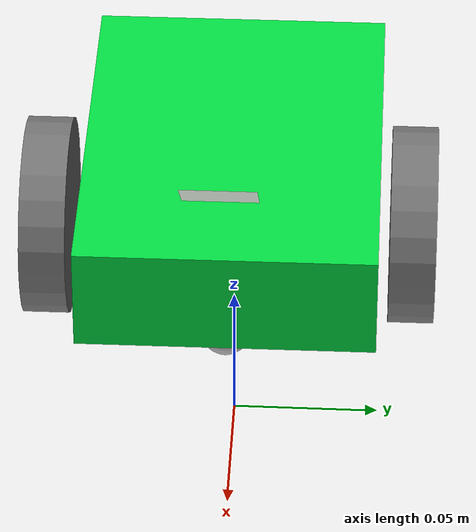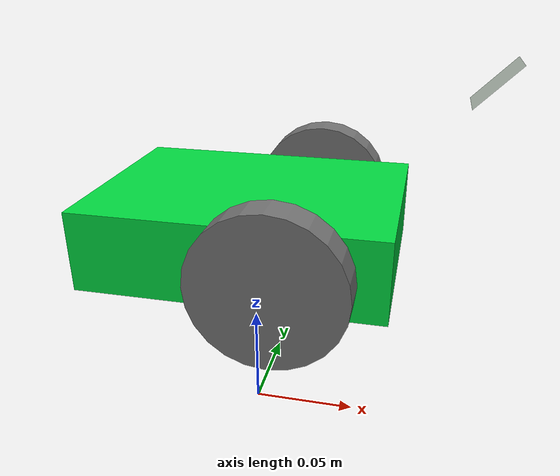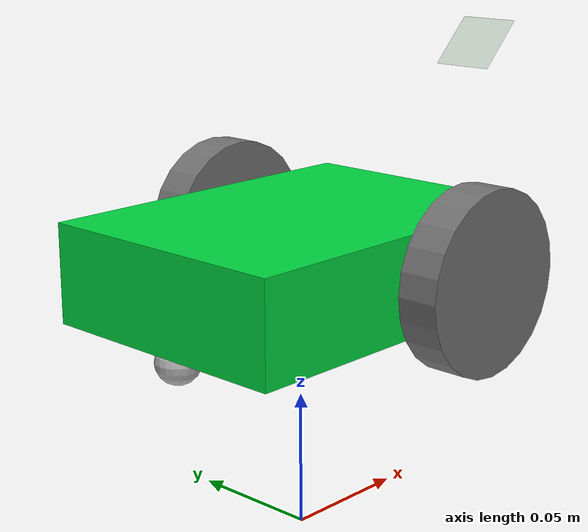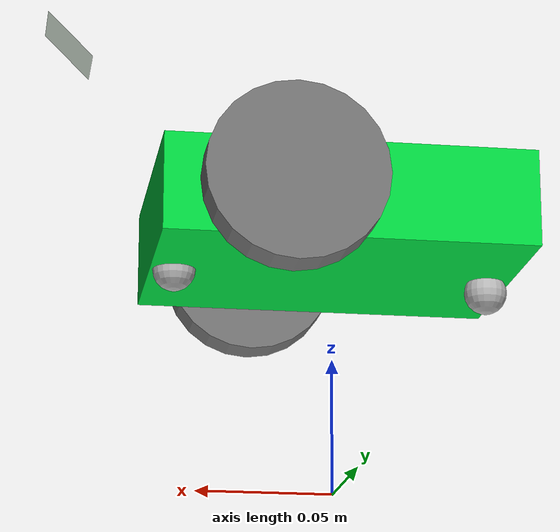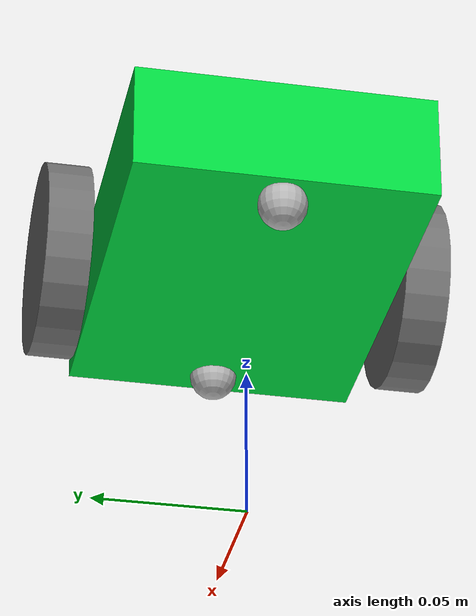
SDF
<?xml version='1.0'?>
<sdf version='1.4'>
	<model name="simple_diff">
		<static>false</static>

		<link name='chassis'>
			<pose>0 0 .1 0 0 0</pose>

			<inertial>
				<mass>5</mass>
				<pose>0 0 0 0 0 0</pose>
				<inertia>
				  <ixx>0.00064492</ixx>
				  <ixy>0</ixy>
				  <ixz>0</ixz>
				  <iyy>0.00115499</iyy>
				  <iyz>0</iyz>
				  <izz>0.00164655</izz>
				</inertia>
			</inertial>

			<collision name='collision'>
				<geometry>
				<box>
					<size>.135 .098 .036</size>
				</box>
				</geometry>
			</collision>

			<visual name='visual'>
				<geometry>
				<box>
					<size>.135 .098 .036</size>
				</box>
				</geometry>
				<material>
					<ambient>0.5 0.5 0.5 1</ambient>
					<diffuse>0.0 0.85 0.25 1</diffuse>
					<specular>0 0 0 0</specular>
					<emissive>0 0 0 1</emissive>
				</material>
			</visual>

			<collision name='caster_rear_collision'>
				<pose>-0.0585 0 -0.022 0 0 0</pose>
				<geometry>
				<sphere>
					<radius>.008</radius>
				</sphere>
				</geometry>

				<surface>
					<friction>
						<ode>
							<mu>0</mu>
							<mu2>0</mu2>
							<slip1>1.0</slip1>
							<slip2>1.0</slip2>
						</ode>
					</friction>
				</surface>
			</collision>

			<visual name='caster_rear_visual'>
				<pose>-0.0585 0 -0.022 0 0 0</pose>
				<geometry>
					<sphere>
					<radius>.008</radius>
					</sphere>
				</geometry>
			</visual>

			<collision name='caster_front_collision'>
				<pose>0.0585 0 -0.018 0 0 0</pose>
				<geometry>
				<sphere>
					<radius>.008</radius>
				</sphere>
				</geometry>

				<surface>
					<friction>
						<ode>
							<mu>0</mu>
							<mu2>0</mu2>
							<slip1>1.0</slip1>
							<slip2>1.0</slip2>
						</ode>
					</friction>
				</surface>
			</collision>

			<visual name='caster_front_visual'>
				<pose>0.0585 0 -0.018 0 0 0</pose>
				<geometry>
					<sphere>
					<radius>.008</radius>
					</sphere>
				</geometry>
			</visual>

		</link>

		<link name="left_wheel">
			<pose>0.022500 0.0600 0.100000 0 1.5707 1.5707</pose>
			<inertial>
				<mass>0.05</mass>
				<inertia>
				  <ixx>0.00001414</ixx>
				  <ixy>0</ixy>
				  <ixz>0</ixz>
				  <iyy>0.00001414</iyy>
				  <iyz>0</iyz>
				  <izz>0.00002641</izz>
				</inertia>
			</inertial>
			<collision name="collision">
				<geometry>
					<cylinder>
						<radius>.0325</radius>
						<length>.015</length>
					</cylinder>
				</geometry>
			</collision>
			<visual name="visual">
				<geometry>
					<cylinder>
						<radius>.0325</radius>
						<length>.015</length>
					</cylinder>
				</geometry>
				<material>
					<ambient>0.35 0.35 0.35 1</ambient>
					<diffuse>0.45 0.45 0.45 1</diffuse>
					<specular>0 0 0 0</specular>
					<emissive>0 0 0 1</emissive>
				</material>
			</visual>
		</link>

		<link name="right_wheel">
			<pose>0.022500 -0.0600 0.100000 0 1.5707 1.5707</pose>
			<inertial>
				<mass>0.05</mass>
				<inertia>
				  <ixx>0.00001414</ixx>
				  <ixy>0</ixy>
				  <ixz>0</ixz>
				  <iyy>0.00001414</iyy>
				  <iyz>0</iyz>
				  <izz>0.00002641</izz>
				</inertia>
			</inertial>
			<collision name="collision">
				<geometry>
					<cylinder>
						<radius>.0325</radius>
						<length>.015</length>
					</cylinder>
				</geometry>
			</collision>
			<visual name="visual">
				<geometry>
					<cylinder>
						<radius>.0325</radius>
						<length>.015</length>
					</cylinder>
				</geometry>
				<material>
					<ambient>0.35 0.35 0.35 1</ambient>
					<diffuse>0.45 0.45 0.45 1</diffuse>
					<specular>0 0 0 0</specular>
					<emissive>0 0 0 1</emissive>
				</material>
			</visual>
		</link>

		<joint type="revolute" name="left_wheel_hinge">
			<pose>0 0 -0.03 0 0 0</pose>
			<child>left_wheel</child>
			<parent>chassis</parent>
			<axis>
				<xyz>0 1 0</xyz>
			</axis>
			<physics>
			 <ode>
			  <limit>
			    <cfm>0</cfm>
			    <erp>0.0</erp>
			  </limit>
			  <suspension>
			    <cfm>0</cfm>
			    <erp>0.0</erp>
			  </suspension>
			</ode>
		       </physics>
		</joint>

		<joint type="revolute" name="right_wheel_hinge">
			<pose>0 0 0.03 0 0 0</pose>
			<child>right_wheel</child>
			<parent>chassis</parent>
			<axis>
				<xyz>0 1 0</xyz>
			</axis>
			<physics>
			 <ode>
			  <limit>
			    <cfm>0</cfm>
			    <erp>0.0</erp>
			  </limit>
			  <suspension>
			    <cfm>0</cfm>
			    <erp>0.0</erp>
			  </suspension>
			</ode>
		       </physics>
		</joint>

		<link name="camera_link">
			<gravity>false</gravity>
			<pose>0.099500 0 0.168000 0 0.784 0</pose>
			<inertial>
				<mass>0.001</mass>
				<inertia>
				  <ixx>0</ixx>
				  <ixy>0</ixy>
				  <ixz>0</ixz>
				  <iyy>0</iyy>
				  <iyz>0</iyz>
				  <izz>0</izz>
				</inertia>
			</inertial>
			<visual name="visual">
				<geometry>
					<box>
						<size>0.000000 0.024000 0.024000</size>
					</box>
				</geometry>
				<material>
					<ambient>0.75 0.75 0.75 1</ambient>
					<diffuse>0.8 0.85 0.8 1</diffuse>
					<specular>0 0 0 0</specular>
					<emissive>0 0 0 1</emissive>
				</material>
			</visual>
			<sensor name="camera" type="camera">
				<camera>
					<horizontal_fov>1</horizontal_fov>

					<image>
						<width>224</width>
						<height>224</height>
						<format>R8G8B8</format>
					</image>

				</camera>
				<always_on>1</always_on>
				<update_rate>10</update_rate>
				<visualize>true</visualize>
				<plugin name="camera_controller" filename="libgazebo_ros_camera.so">
					<ros>
						<namespace>/simple_diff</namespace>
						<!-- TODO(louise) Remapping not working due to https://github.com/ros-perception/image_common/issues/93 -->
					</ros>
				</plugin>
			</sensor>
		</link>

		<joint name="camera_joint" type="fixed">
			<parent>chassis</parent>
			<child>camera_link</child>
		</joint>

		<!-- Controls the differential drive robot -->
		<plugin name='diff_drive' filename='libgazebo_ros_diff_drive.so'>
			<ros>
				<namespace>/simple_diff</namespace>
				<remapping>cmd_vel:=cmd_vel</remapping>
				<remapping>odom:=odom</remapping>
			</ros>

			<!-- wheels -->
			<left_joint>left_wheel_hinge</left_joint>
			<right_joint>right_wheel_hinge</right_joint>

			<!-- kinematics -->
			<wheel_separation>0.120</wheel_separation>
			<wheel_diameter>0.065</wheel_diameter>

			<!-- limits -->
			<max_wheel_torque>10</max_wheel_torque>
			<max_wheel_acceleration>0.25</max_wheel_acceleration>

			<!-- output -->
			<publish_odom>true</publish_odom>
			<publish_odom_tf>true</publish_odom_tf>
			<publish_wheel_tf>true</publish_wheel_tf>

			<odometry_frame>odom</odometry_frame>
			<robot_base_frame>chassis</robot_base_frame>
		</plugin>
	</model>
</sdf>
